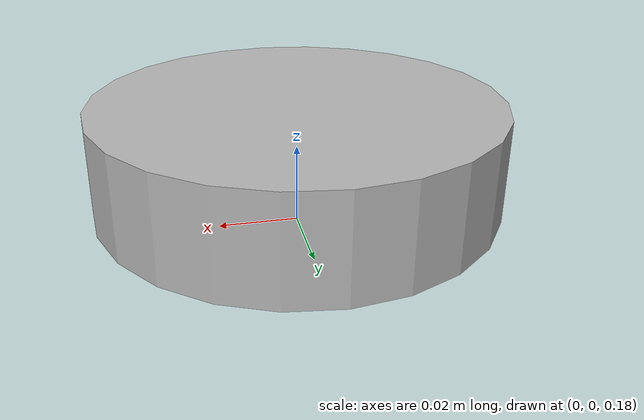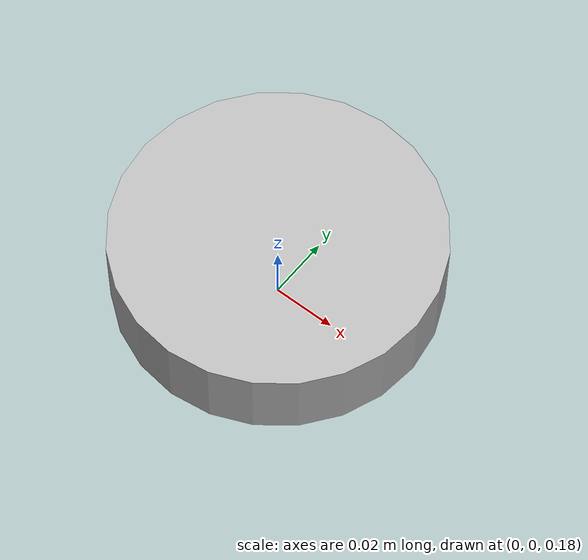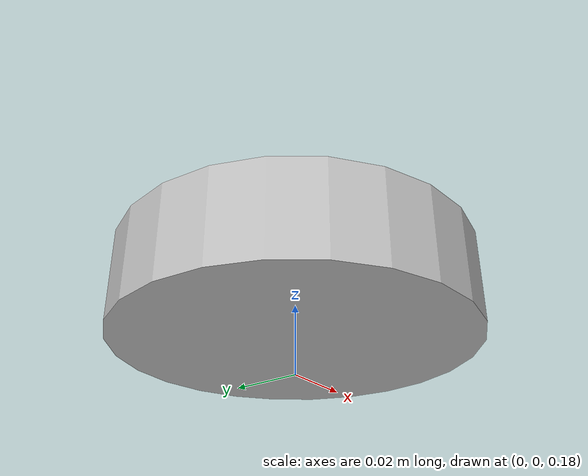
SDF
<sdf version='1.5'>
  <model name='wheel'>
   <pose>0 0 0.2 0 0 0</pose>
    <link name="wheel_link">
      <pose> 0 0 0 0 0 0</pose>
      <inertial>
        <pose>0 0 0 0 0 0</pose>
        <mass>0.1</mass>
        <inertia>
          <ixx>0.00001</ixx>
          <ixy>0</ixy>
          <ixz>0</ixz>
          <iyy>0.00001</iyy>
          <iyz>0</iyz>
          <izz>0.00001</izz>
        </inertia>
      </inertial>
      <collision name="collision">
        <geometry>
            <cylinder>
              <radius>.05</radius>
              <length>.025</length>
            </cylinder>
        </geometry>
        <max_contacts>1</max_contacts>
        <surface>
          <friction>
            <ode>
              <mu>1</mu>
              <mu2>1</mu2>
            </ode>
          </friction>
          <contact>
            <ode>
              <min_depth>0.001</min_depth>
              <kp>1e6</kp>
            </ode>
          </contact>
        </surface>
      </collision>
      <visual name="wheel_visual">
        <geometry>
            <cylinder>
              <radius>.05</radius>
              <length>.025</length>
            </cylinder>
          </geometry>
      </visual>
    </link>
  </model>
</sdf>
